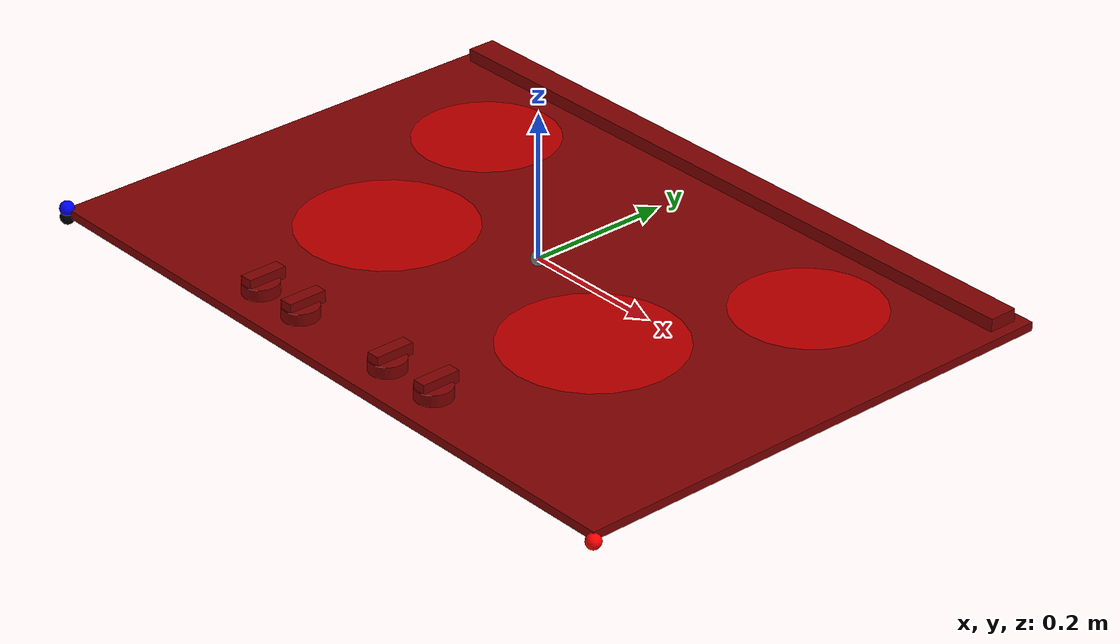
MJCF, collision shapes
<mujoco model="model">
  <asset>
    <texture file="visuals/image21.png" name="tex-model" type="2d" />
    <texture type="2d" name="image21" file="visuals/image21.png" />
    <material name="model" reflectance="0.5" texrepeat="1 1" texture="tex-model" texuniform="false" />
    <material name="TX_Stove_3_6" texture="image21" specular="0.5" shininess="0.25" />
    <mesh file="visuals/model_0.obj" name="model_0_vis" scale="1 1 1" />
    <mesh file="visuals/knob_rear_right_0.obj" name="knob_rear_right_0_vis" scale="1 1 1" />
    <mesh file="visuals/knob_front_left_0.obj" name="knob_front_left_0_vis" scale="1 1 1" />
    <mesh file="visuals/knob_front_right_0.obj" name="knob_front_right_0_vis" scale="1 1 1" />
    <mesh file="visuals/knob_rear_left_0.obj" name="knob_rear_left_0_vis" scale="1 1 1" />
  </asset>
  <default>
    <default class="visual">
      <geom conaffinity="0" contype="0" group="1" type="mesh" />
    </default>
    <default class="collision">
      <geom group="0" rgba="0.5 0 0 0.5" />
    </default>
  </default>
  <worldbody>
    <body>
      <body name="object">
        <geom solimp="0.998 0.998 0.001" solref="0.001 1" density="100" friction="0.95 0.3 0.1"
          type="mesh" mesh="model_0_vis" material="TX_Stove_3_6" class="visual" />
        <!-- Burners -->
        <site name="burner_on_front_left" pos="-0.201 -0.077 -0.008" size="0.12 0.0001"
          rgba="1 0 0 0.5" type="cylinder" />
        <site name="burner_on_front_right" pos="0.188 -0.077 -0.008" size="0.12 0.0001"
          rgba="1 0 0 0.5" type="cylinder" />
        <site name="burner_on_rear_left" pos="-0.301 0.173 -0.008" size="0.1 0.0001"
          rgba="1 0 0 0.5" type="cylinder" />
        <site name="burner_on_rear_right" pos="0.298 0.175 -0.008" size="0.1 0.0001"
          rgba="1 0 0 0.5" type="cylinder" />
        <site name="burner_front_left_place_site" pos="-0.201 -0.077 -0.008" size="0.12 0.0001"
          rgba="1 0 0 0" type="cylinder" />
        <site name="burner_front_right_place_site" pos="0.188 -0.077 -0.008" size="0.12 0.0001"
          rgba="1 0 0 0" type="cylinder" />
        <site name="burner_rear_left_place_site" pos="-0.301 0.173 -0.008" size="0.1 0.0001"
          rgba="1 0 0 0" type="cylinder" />
        <site name="burner_rear_right_place_site" pos="0.298 0.175 -0.008" size="0.1 0.0001"
          rgba="1 0 0 0" type="cylinder" />
        <!-- Main -->
        <geom class="collision" type="box" pos="0 0 -0.014" size="0.5 0.355 0.006" />
        <geom class="collision" type="box" pos="0 0.32 -0.0005" size="0.484 0.02 0.01" />
        <body name="knob_rear_right">
          <joint name="knob_rear_right_joint" type="hinge" axis="0 0 1" pos="-0.087 -0.305 0.002"
            damping="1" armature="2" />
          <geom solimp="0.998 0.998 0.001" solref="0.001 1" density="100" friction="0.95 0.3 0.1"
            type="mesh" mesh="knob_rear_right_0_vis" material="TX_Stove_3_6" class="visual" />
          <geom class="collision" type="cylinder" pos="-0.087 -0.305 0.003" size="0.0245 0.008 0" />
          <geom class="collision" type="box" pos="-0.087 -0.3005 0.015" size="0.009 0.027 0.008"
            name="knob_rear_right_main" />
        </body>
        <body name="knob_front_left">
          <joint name="knob_front_left_joint" type="hinge" axis="0 0 1" pos="0.0785 -0.305 0.002"
            damping="1" armature="2" />
          <geom solimp="0.998 0.998 0.001" solref="0.001 1" density="100" friction="0.95 0.3 0.002"
            type="mesh" mesh="knob_front_left_0_vis" material="TX_Stove_3_6" class="visual" />
          <geom class="collision" type="cylinder" pos="0.0785 -0.305 0.003" size="0.0245 0.008 0" />
          <geom class="collision" type="box" pos="0.0785 -0.3005 0.015" size="0.009 0.027 0.008"
            name="knob_front_left_main" />
        </body>
        <body name="knob_front_right">
          <joint name="knob_front_right_joint" type="hinge" axis="0 0 1" pos="0.1635 -0.305 0.002"
            damping="1" armature="2" />
          <geom solimp="0.998 0.998 0.001" solref="0.001 1" density="100" friction="0.95 0.3 0.1"
            type="mesh" mesh="knob_front_right_0_vis" material="TX_Stove_3_6" class="visual" />
          <geom class="collision" type="cylinder" pos="0.1635 -0.305 0.003" size="0.0245 0.008 0" />
          <geom class="collision" type="box" pos="0.1635 -0.3005 0.015" size="0.009 0.027 0.008"
            name="knob_front_right_main" />
        </body>
        <body name="knob_rear_left">
          <joint name="knob_rear_left_joint" type="hinge" axis="0 0 1" pos="-0.165 -0.305 0.002"
            damping="1" armature="2" />
          <geom solimp="0.998 0.998 0.001" solref="0.001 1" density="100" friction="0.95 0.3 0.1"
            type="mesh" mesh="knob_rear_left_0_vis" material="TX_Stove_3_6" class="visual" />
          <geom class="collision" type="cylinder" pos="-0.165 -0.305 0.003" size="0.0245 0.008 0" />
          <geom class="collision" type="box" pos="-0.165 -0.3005 0.015" size="0.009 0.027 0.008"
            name="knob_rear_left_main" />
        </body>
        <!-- exterior bounding box points -->
        <site rgba="0 0 0 1" size="0.01" pos="-0.5 -0.355 -0.02" name="ext_p0" />
        <site rgba="1 0 0 1" size="0.01" pos="0.5 -0.355 -0.02" name="ext_px" />
        <site rgba="0 1 0 1" size="0.01" pos="-0.5 0.355 -0.02" name="ext_py" />
        <site rgba="0 0 1 1" size="0.01" pos="-0.5 -0.355 -0.008" name="ext_pz" />
        <!-- interior bounding box points -->
        <site rgba="0.5 0.5 0.5 1" size="0.01" pos="0 0 0" name="int_p0" />
        <site rgba="1 1 0 1" size="0.01" pos="0 0 0" name="int_px" />
        <site rgba="0 1 1 1" size="0.01" pos="0 0 0" name="int_py" />
        <site rgba="1 0 1 1" size="0.01" pos="0 0 0" name="int_pz" />
      </body>
    </body>
  </worldbody>
</mujoco>
